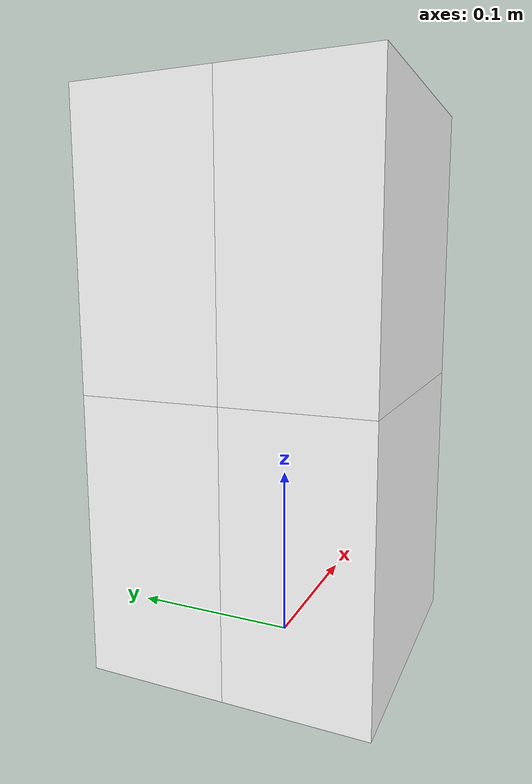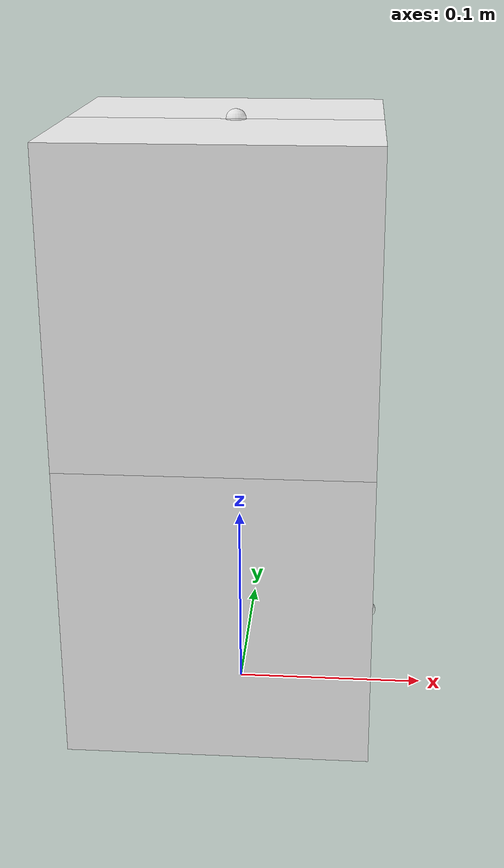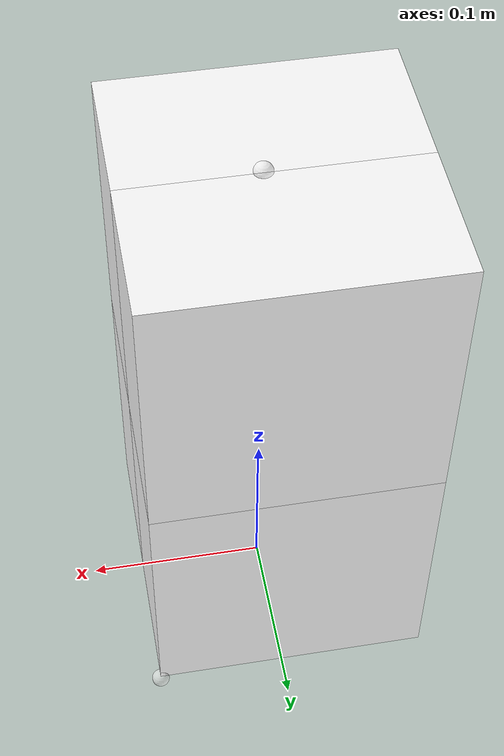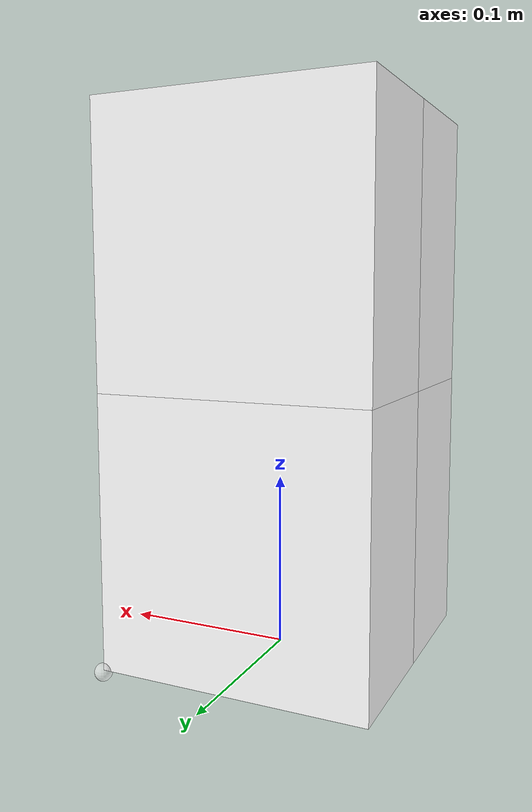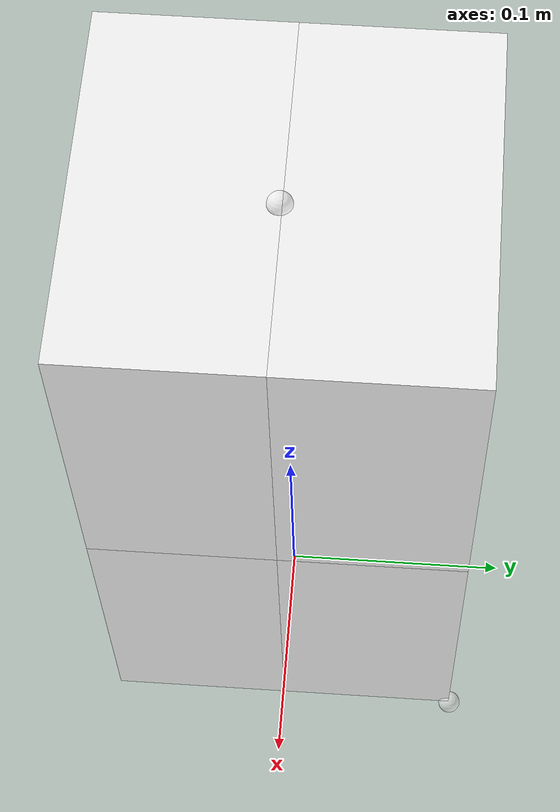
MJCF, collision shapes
<mujoco model="longbox_a08">
  <default>
    <default class="visual">
      <geom group="1" type="mesh" contype="0" conaffinity="0" density="100"/>
    </default>
    <default class="collision">
      <geom group="0" type="mesh" density="100" solimp="0.95 0.98 0.001" solref="0.004 1" rgba="1 1 1 0.25"/>
    </default>
  </default>
  <asset>
    <texture type="2d" name="T_LongBox_A01_Tile_Albedo" file="textures/T_LongBox_A01_Tile_Albedo.png"/>
    <material name="opaque__cardboard__longbox.009" texture="T_LongBox_A01_Tile_Albedo" specular="0.5" shininess="0.25"/>
    <texture type="2d" name="T_LongBox_A01_Trim_Albedo" file="textures/T_LongBox_A01_Trim_Albedo.png"/>
    <material name="opaque__cardboard__longbox_decal.009" texture="T_LongBox_A01_Trim_Albedo" specular="0.5" shininess="0.25"/>
    <mesh file="meshes/longbox_a08_0.obj" name="longbox_a08_0"/>
    <mesh file="meshes/longbox_a08_1.obj" name="longbox_a08_1"/>
  </asset>
  <worldbody>
    <body>
      <body name="object">
        <geom mesh="longbox_a08_0" material="opaque__cardboard__longbox.009" class="visual"/>
        <geom mesh="longbox_a08_1" material="opaque__cardboard__longbox_decal.009" class="visual"/>
        <geom name="collider_box_e8223e63" type="box" pos="-0.005650025400012792 0.040098211923876276 0.23203545751490284" size="0.07678800100909002 0.03929919652833351 0.07703229771734593" quat="0.0005524909278018757 0.9999998473489994 6.600358303463617e-06 -3.491115625401839e-06" class="collision"/>
        <geom name="collider_box_6b63c3e7" type="box" pos="-0.005651099990845828 0.039927973360217 0.07797095613923889" size="0.07678800100909002 0.03929919652833351 0.07703229771734593" quat="0.0005524909278018757 0.9999998473489994 6.600358303463617e-06 -3.491115625401839e-06" class="collision"/>
        <geom name="collider_box_6a608800" type="box" pos="-0.0056489875418559874 -0.03850013314221694 0.23212230729623018" size="0.07678800100909002 0.03929919652833351 0.07703229771734593" quat="0.0005524909278018757 0.9999998473489994 6.600358303463617e-06 -3.491115625401839e-06" class="collision"/>
        <geom name="collider_box_1f84abba" type="box" pos="-0.005650062132689023 -0.038670371705876214 0.0780578059205662" size="0.07678800100909002 0.03929919652833351 0.07703229771734593" quat="0.0005524909278018757 0.9999998473489994 6.600358303463617e-06 -3.491115625401839e-06" class="collision"/>
      </body>
      <site name="bottom_site" pos="0 0 0.000907" rgba="1 1 1 0.5" size="0.005"/>
      <site name="top_site" pos="0 0 0.309036" rgba="1 1 1 0.5" size="0.005"/>
      <site name="horizontal_radius_site" pos="0.071139 0.079465 0" rgba="1 1 1 0.5" size="0.005"/>
    </body>
  </worldbody>
</mujoco>
